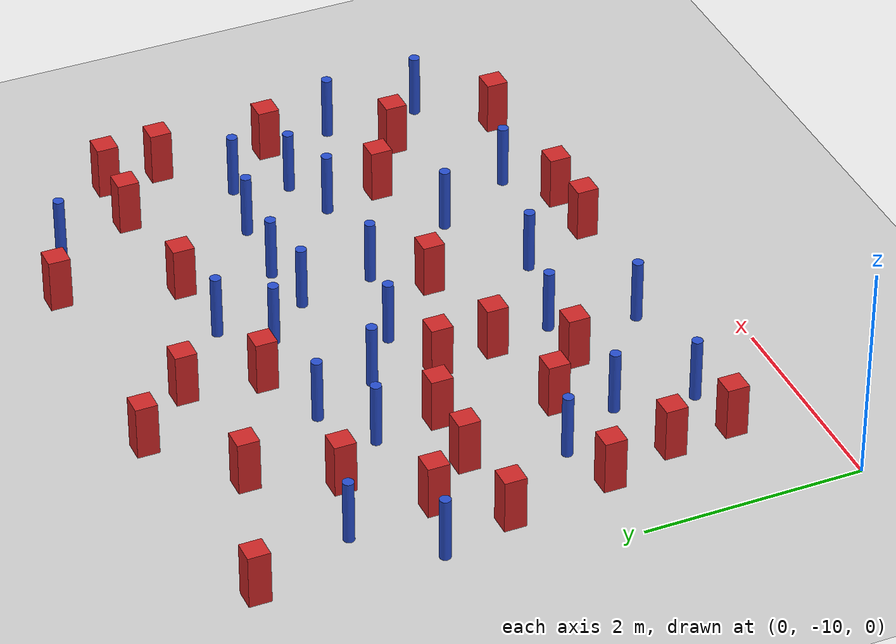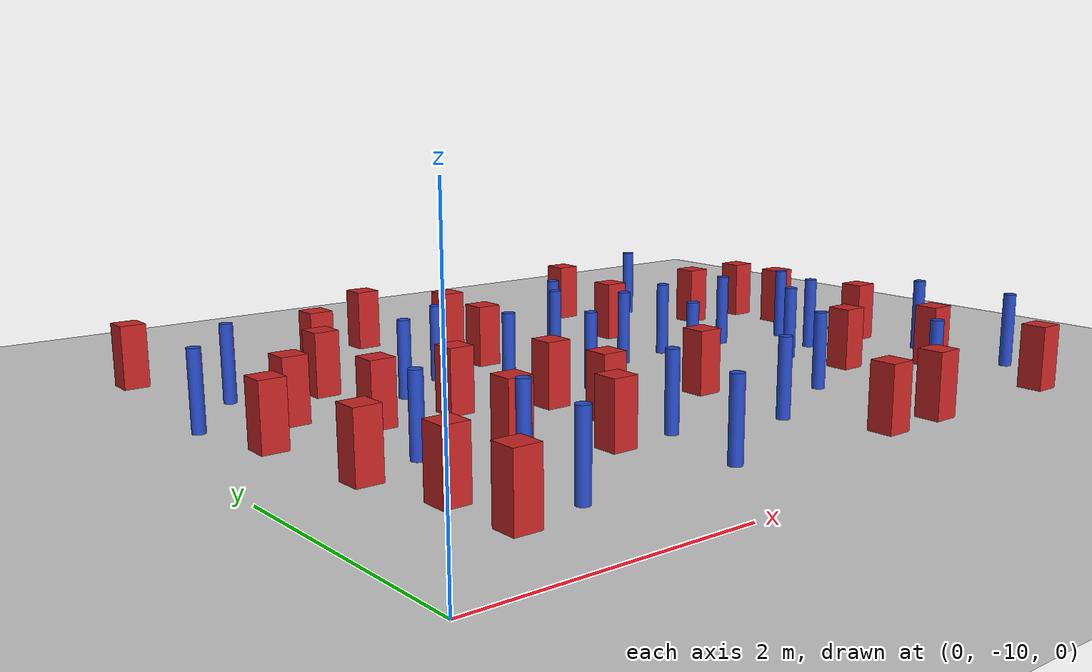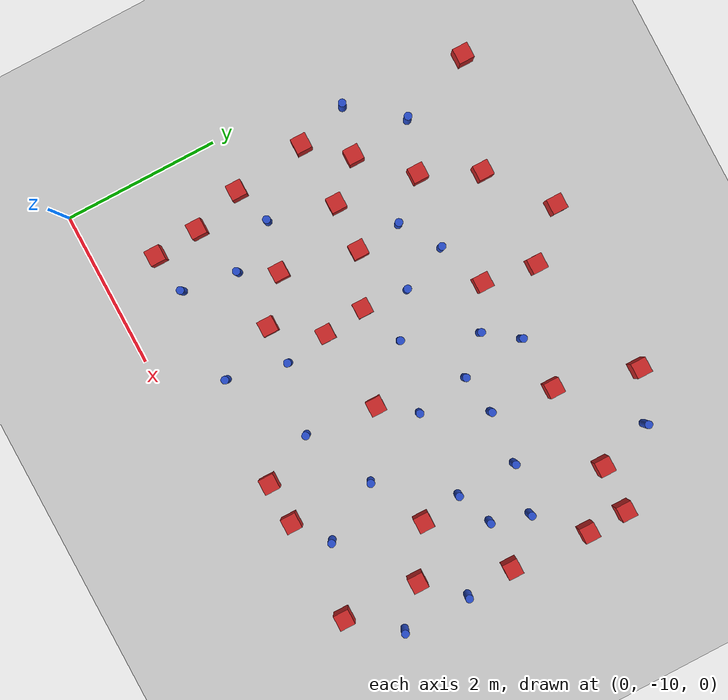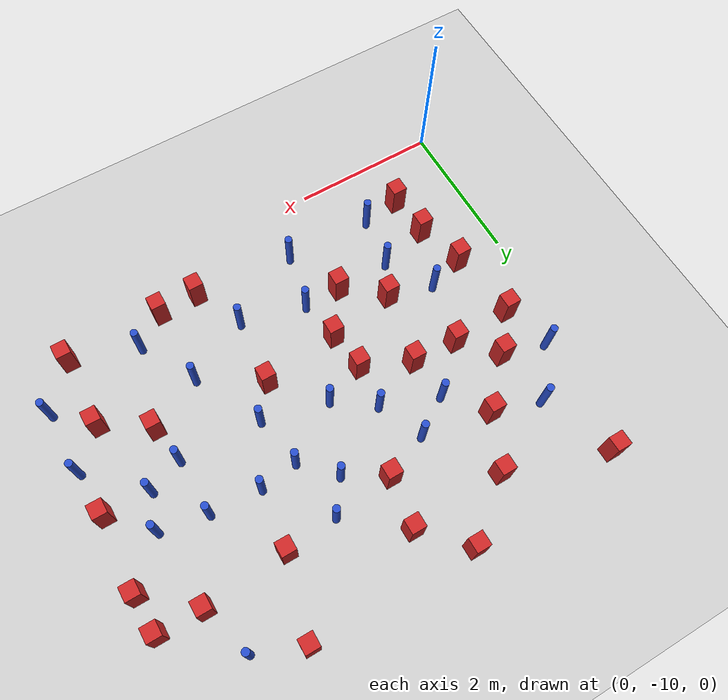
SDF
<sdf version="1.6">
 <world name="default">
  <model name="ground_plane">
   <static>1</static>
   <link name="link">
    <collision name="collision">
     <geometry><plane><normal>0 0 1</normal><size>100 100</size></plane></geometry>
     <surface><friction><ode><mu>100</mu><mu2>50</mu2></ode></friction></surface>
    </collision>
    <visual name="visual">
     <cast_shadows>0</cast_shadows>
     <geometry><plane><normal>0 0 1</normal><size>100 100</size></plane></geometry>
     <material>
      <ambient>1.0 1.0 1.0 1.0</ambient>
      <diffuse>0.8 0.8 0.8 1.0</diffuse>
      <specular>0.01 0.01 0.01 1.000000</specular>
     </material>
    </visual>
   </link>
  </model>
  <model name="square_post_obstacle0">
   <static>true</static>
   <pose>5.91802541232 -9.29908358302 1.91545236811e-07 -7.35059704564e-06 1.12565212e-07 2.39332434364e-05</pose>
   <link name="link">
    <pose>0 0 0.25 0 -0 0</pose>
    <inertial>
     <mass>100</mass>
     <inertia>
      <ixx>0.166667</ixx>
      <ixy>0</ixy>
      <ixz>0</ixz>
      <iyy>0.166667</iyy>
      <iyz>0</iyz>
      <izz>0.166667</izz>
     </inertia>
    </inertial>
    <collision name="collision"><geometry><box><size>.2 .2 .5</size></box></geometry></collision>
    <visual name="visual">
     <geometry><box><size>.2 .2 .5</size></box></geometry>
     <material>
      <script><name>Gazebo/Red</name><uri>file://media/materials/scripts/gazebo.material</uri></script>
     </material>
    </visual>
   </link>
  </model>
  <model name="square_post_obstacle3">
   <static>true</static>
   <pose>3.19145135522 -5.20112439328 1.91545236811e-07 -7.35059704564e-06 1.12565212e-07 2.39332434364e-05</pose>
   <link name="link">
    <pose>0 0 0.25 0 -0 0</pose>
    <inertial>
     <mass>100</mass>
     <inertia>
      <ixx>0.166667</ixx>
      <ixy>0</ixy>
      <ixz>0</ixz>
      <iyy>0.166667</iyy>
      <iyz>0</iyz>
      <izz>0.166667</izz>
     </inertia>
    </inertial>
    <collision name="collision"><geometry><box><size>.2 .2 .5</size></box></geometry></collision>
    <visual name="visual">
     <geometry><box><size>.2 .2 .5</size></box></geometry>
     <material>
      <script><name>Gazebo/Red</name><uri>file://media/materials/scripts/gazebo.material</uri></script>
     </material>
    </visual>
   </link>
  </model>
  <model name="square_post_obstacle9">
   <static>true</static>
   <pose>0.974941100024 -6.5548905209 1.91545236811e-07 -7.35059704564e-06 1.12565212e-07 2.39332434364e-05</pose>
   <link name="link">
    <pose>0 0 0.25 0 -0 0</pose>
    <inertial>
     <mass>100</mass>
     <inertia>
      <ixx>0.166667</ixx>
      <ixy>0</ixy>
      <ixz>0</ixz>
      <iyy>0.166667</iyy>
      <iyz>0</iyz>
      <izz>0.166667</izz>
     </inertia>
    </inertial>
    <collision name="collision"><geometry><box><size>.2 .2 .5</size></box></geometry></collision>
    <visual name="visual">
     <geometry><box><size>.2 .2 .5</size></box></geometry>
     <material>
      <script><name>Gazebo/Red</name><uri>file://media/materials/scripts/gazebo.material</uri></script>
     </material>
    </visual>
   </link>
  </model>
  <model name="pole_obstacle13">
   <static>true</static>
   <pose>3.72014007891 -8.66063864401 7.38925637345e-09 -8.47170692793e-08 1.24976764408e-08 -1.74513093041e-07</pose>
   <link name="link">
    <pose>0 0 0.3 0 -0 0</pose>
    <inertial>
     <mass>1</mass>
     <inertia><ixx>0.145833</ixx><ixy>0</ixy><ixz>0</ixz><iyy>0.145833</iyy><iyz>0</iyz><izz>0.125</izz></inertia>
    </inertial>
    <collision name="collision">
     <geometry><cylinder><radius>0.05</radius><length>.6</length></cylinder></geometry>
    </collision>
    <visual name="visual">
     <geometry><cylinder><radius>0.05</radius><length>.6</length></cylinder></geometry>
     <material>
      <script><name>Gazebo/Blue</name><uri>file://media/materials/scripts/gazebo.material</uri></script>
     </material>
    </visual>
   </link>
  </model>
  <model name="square_post_obstacle27">
   <static>true</static>
   <pose>5.32845050327 -7.89079048025 1.91545236811e-07 -7.35059704564e-06 1.12565212e-07 2.39332434364e-05</pose>
   <link name="link">
    <pose>0 0 0.25 0 -0 0</pose>
    <inertial>
     <mass>100</mass>
     <inertia>
      <ixx>0.166667</ixx>
      <ixy>0</ixy>
      <ixz>0</ixz>
      <iyy>0.166667</iyy>
      <iyz>0</iyz>
      <izz>0.166667</izz>
     </inertia>
    </inertial>
    <collision name="collision"><geometry><box><size>.2 .2 .5</size></box></geometry></collision>
    <visual name="visual">
     <geometry><box><size>.2 .2 .5</size></box></geometry>
     <material>
      <script><name>Gazebo/Red</name><uri>file://media/materials/scripts/gazebo.material</uri></script>
     </material>
    </visual>
   </link>
  </model>
  <model name="pole_obstacle20">
   <static>true</static>
   <pose>4.0101638845 -6.61513149973 7.38925637345e-09 -8.47170692796e-08 1.24976764793e-08 -1.74513093032e-07</pose>
   <link name="link">
    <pose>0 0 0.3 0 -0 0</pose>
    <inertial>
     <mass>1</mass>
     <inertia><ixx>0.145833</ixx><ixy>0</ixy><ixz>0</ixz><iyy>0.145833</iyy><iyz>0</iyz><izz>0.125</izz></inertia>
    </inertial>
    <collision name="collision">
     <geometry><cylinder><radius>0.05</radius><length>.6</length></cylinder></geometry>
    </collision>
    <visual name="visual">
     <geometry><cylinder><radius>0.05</radius><length>.6</length></cylinder></geometry>
     <material>
      <script><name>Gazebo/Blue</name><uri>file://media/materials/scripts/gazebo.material</uri></script>
     </material>
    </visual>
   </link>
  </model>
  <model name="pole_obstacle24">
   <static>true</static>
   <pose>0.369326233479 -6.38760950172 7.38925637345e-09 -8.471706928e-08 1.24976765079e-08 -1.74513093015e-07</pose>
   <link name="link">
    <pose>0 0 0.3 0 -0 0</pose>
    <inertial>
     <mass>1</mass>
     <inertia><ixx>0.145833</ixx><ixy>0</ixy><ixz>0</ixz><iyy>0.145833</iyy><iyz>0</iyz><izz>0.125</izz></inertia>
    </inertial>
    <collision name="collision">
     <geometry><cylinder><radius>0.05</radius><length>.6</length></cylinder></geometry>
    </collision>
    <visual name="visual">
     <geometry><cylinder><radius>0.05</radius><length>.6</length></cylinder></geometry>
     <material>
      <script><name>Gazebo/Blue</name><uri>file://media/materials/scripts/gazebo.material</uri></script>
     </material>
    </visual>
   </link>
  </model>
  <model name="pole_obstacle25">
   <static>true</static>
   <pose>1.96782251755 -6.45773322744 7.38925637345e-09 -8.471706928e-08 1.24976765202e-08 -1.7451309301e-07</pose>
   <link name="link">
    <pose>0 0 0.3 0 -0 0</pose>
    <inertial>
     <mass>1</mass>
     <inertia><ixx>0.145833</ixx><ixy>0</ixy><ixz>0</ixz><iyy>0.145833</iyy><iyz>0</iyz><izz>0.125</izz></inertia>
    </inertial>
    <collision name="collision">
     <geometry><cylinder><radius>0.05</radius><length>.6</length></cylinder></geometry>
    </collision>
    <visual name="visual">
     <geometry><cylinder><radius>0.05</radius><length>.6</length></cylinder></geometry>
     <material>
      <script><name>Gazebo/Blue</name><uri>file://media/materials/scripts/gazebo.material</uri></script>
     </material>
    </visual>
   </link>
  </model>
  <model name="square_post_obstacle40">
   <static>true</static>
   <pose>6.35906747789 -5.65132127458 1.91545236811e-07 -7.35059704564e-06 1.12565212e-07 2.39332434364e-05</pose>
   <link name="link">
    <pose>0 0 0.25 0 -0 0</pose>
    <inertial>
     <mass>100</mass>
     <inertia>
      <ixx>0.166667</ixx>
      <ixy>0</ixy>
      <ixz>0</ixz>
      <iyy>0.166667</iyy>
      <iyz>0</iyz>
      <izz>0.166667</izz>
     </inertia>
    </inertial>
    <collision name="collision"><geometry><box><size>.2 .2 .5</size></box></geometry></collision>
    <visual name="visual">
     <geometry><box><size>.2 .2 .5</size></box></geometry>
     <material>
      <script><name>Gazebo/Red</name><uri>file://media/materials/scripts/gazebo.material</uri></script>
     </material>
    </visual>
   </link>
  </model>
  <model name="pole_obstacle45">
   <static>true</static>
   <pose>5.01745704292 -8.99251812514 7.38925637345e-09 -8.471706928e-08 1.24976765081e-08 -1.74513093015e-07</pose>
   <link name="link">
    <pose>0 0 0.3 0 -0 0</pose>
    <inertial>
     <mass>1</mass>
     <inertia><ixx>0.145833</ixx><ixy>0</ixy><ixz>0</ixz><iyy>0.145833</iyy><iyz>0</iyz><izz>0.125</izz></inertia>
    </inertial>
    <collision name="collision">
     <geometry><cylinder><radius>0.05</radius><length>.6</length></cylinder></geometry>
    </collision>
    <visual name="visual">
     <geometry><cylinder><radius>0.05</radius><length>.6</length></cylinder></geometry>
     <material>
      <script><name>Gazebo/Blue</name><uri>file://media/materials/scripts/gazebo.material</uri></script>
     </material>
    </visual>
   </link>
  </model>
  <model name="square_post_obstacle45">
   <static>true</static>
   <pose>4.0357943352 -9.33460095483 1.91545236811e-07 -7.35059704564e-06 1.12565212e-07 2.39332434364e-05</pose>
   <link name="link">
    <pose>0 0 0.25 0 -0 0</pose>
    <inertial>
     <mass>100</mass>
     <inertia>
      <ixx>0.166667</ixx>
      <ixy>0</ixy>
      <ixz>0</ixz>
      <iyy>0.166667</iyy>
      <iyz>0</iyz>
      <izz>0.166667</izz>
     </inertia>
    </inertial>
    <collision name="collision"><geometry><box><size>.2 .2 .5</size></box></geometry></collision>
    <visual name="visual">
     <geometry><box><size>.2 .2 .5</size></box></geometry>
     <material>
      <script><name>Gazebo/Red</name><uri>file://media/materials/scripts/gazebo.material</uri></script>
     </material>
    </visual>
   </link>
  </model>
  <model name="square_post_obstacle47">
   <static>true</static>
   <pose>4.58356273006 -9.3201476978 1.91545236811e-07 -7.35059704564e-06 1.12565212e-07 2.39332434364e-05</pose>
   <link name="link">
    <pose>0 0 0.25 0 -0 0</pose>
    <inertial>
     <mass>100</mass>
     <inertia>
      <ixx>0.166667</ixx>
      <ixy>0</ixy>
      <ixz>0</ixz>
      <iyy>0.166667</iyy>
      <iyz>0</iyz>
      <izz>0.166667</izz>
     </inertia>
    </inertial>
    <collision name="collision"><geometry><box><size>.2 .2 .5</size></box></geometry></collision>
    <visual name="visual">
     <geometry><box><size>.2 .2 .5</size></box></geometry>
     <material>
      <script><name>Gazebo/Red</name><uri>file://media/materials/scripts/gazebo.material</uri></script>
     </material>
    </visual>
   </link>
  </model>
  <model name="square_post_obstacle51">
   <static>true</static>
   <pose>1.88297851376 -5.25009784492 1.91545236811e-07 -7.35059704564e-06 1.12565212e-07 2.39332434364e-05</pose>
   <link name="link">
    <pose>0 0 0.25 0 -0 0</pose>
    <inertial>
     <mass>100</mass>
     <inertia>
      <ixx>0.166667</ixx>
      <ixy>0</ixy>
      <ixz>0</ixz>
      <iyy>0.166667</iyy>
      <iyz>0</iyz>
      <izz>0.166667</izz>
     </inertia>
    </inertial>
    <collision name="collision"><geometry><box><size>.2 .2 .5</size></box></geometry></collision>
    <visual name="visual">
     <geometry><box><size>.2 .2 .5</size></box></geometry>
     <material>
      <script><name>Gazebo/Red</name><uri>file://media/materials/scripts/gazebo.material</uri></script>
     </material>
    </visual>
   </link>
  </model>
  <model name="pole_obstacle51">
   <static>true</static>
   <pose>3.61067177983 -6.19628787344 7.38925637345e-09 -8.47170692798e-08 1.24976765033e-08 -1.74513093019e-07</pose>
   <link name="link">
    <pose>0 0 0.3 0 -0 0</pose>
    <inertial>
     <mass>1</mass>
     <inertia><ixx>0.145833</ixx><ixy>0</ixy><ixz>0</ixz><iyy>0.145833</iyy><iyz>0</iyz><izz>0.125</izz></inertia>
    </inertial>
    <collision name="collision">
     <geometry><cylinder><radius>0.05</radius><length>.6</length></cylinder></geometry>
    </collision>
    <visual name="visual">
     <geometry><cylinder><radius>0.05</radius><length>.6</length></cylinder></geometry>
     <material>
      <script><name>Gazebo/Blue</name><uri>file://media/materials/scripts/gazebo.material</uri></script>
     </material>
    </visual>
   </link>
  </model>
  <model name="pole_obstacle56">
   <static>true</static>
   <pose>3.91176299712 -5.78391773838 7.38925637345e-09 -8.47170692798e-08 1.24976765033e-08 -1.74513093019e-07</pose>
   <link name="link">
    <pose>0 0 0.3 0 -0 0</pose>
    <inertial>
     <mass>1</mass>
     <inertia><ixx>0.145833</ixx><ixy>0</ixy><ixz>0</ixz><iyy>0.145833</iyy><iyz>0</iyz><izz>0.125</izz></inertia>
    </inertial>
    <collision name="collision">
     <geometry><cylinder><radius>0.05</radius><length>.6</length></cylinder></geometry>
    </collision>
    <visual name="visual">
     <geometry><cylinder><radius>0.05</radius><length>.6</length></cylinder></geometry>
     <material>
      <script><name>Gazebo/Blue</name><uri>file://media/materials/scripts/gazebo.material</uri></script>
     </material>
    </visual>
   </link>
  </model>
  <model name="pole_obstacle62">
   <static>true</static>
   <pose>5.85686588419 -6.69482676359 7.38925637345e-09 -8.47170692796e-08 1.24976764786e-08 -1.74513093032e-07</pose>
   <link name="link">
    <pose>0 0 0.3 0 -0 0</pose>
    <inertial>
     <mass>1</mass>
     <inertia><ixx>0.145833</ixx><ixy>0</ixy><ixz>0</ixz><iyy>0.145833</iyy><iyz>0</iyz><izz>0.125</izz></inertia>
    </inertial>
    <collision name="collision">
     <geometry><cylinder><radius>0.05</radius><length>.6</length></cylinder></geometry>
    </collision>
    <visual name="visual">
     <geometry><cylinder><radius>0.05</radius><length>.6</length></cylinder></geometry>
     <material>
      <script><name>Gazebo/Blue</name><uri>file://media/materials/scripts/gazebo.material</uri></script>
     </material>
    </visual>
   </link>
  </model>
  <model name="pole_obstacle68">
   <static>true</static>
   <pose>6.3874585457 -7.83293034767 7.38925637345e-09 -8.47170692796e-08 1.24976764786e-08 -1.74513093032e-07</pose>
   <link name="link">
    <pose>0 0 0.3 0 -0 0</pose>
    <inertial>
     <mass>1</mass>
     <inertia><ixx>0.145833</ixx><ixy>0</ixy><ixz>0</ixz><iyy>0.145833</iyy><iyz>0</iyz><izz>0.125</izz></inertia>
    </inertial>
    <collision name="collision">
     <geometry><cylinder><radius>0.05</radius><length>.6</length></cylinder></geometry>
    </collision>
    <visual name="visual">
     <geometry><cylinder><radius>0.05</radius><length>.6</length></cylinder></geometry>
     <material>
      <script><name>Gazebo/Blue</name><uri>file://media/materials/scripts/gazebo.material</uri></script>
     </material>
    </visual>
   </link>
  </model>
  <model name="pole_obstacle70">
   <static>true</static>
   <pose>2.83966890681 -8.44475994747 7.38925637345e-09 -8.47170692793e-08 1.24976764408e-08 -1.74513093041e-07</pose>
   <link name="link">
    <pose>0 0 0.3 0 -0 0</pose>
    <inertial>
     <mass>1</mass>
     <inertia><ixx>0.145833</ixx><ixy>0</ixy><ixz>0</ixz><iyy>0.145833</iyy><iyz>0</iyz><izz>0.125</izz></inertia>
    </inertial>
    <collision name="collision">
     <geometry><cylinder><radius>0.05</radius><length>.6</length></cylinder></geometry>
    </collision>
    <visual name="visual">
     <geometry><cylinder><radius>0.05</radius><length>.6</length></cylinder></geometry>
     <material>
      <script><name>Gazebo/Blue</name><uri>file://media/materials/scripts/gazebo.material</uri></script>
     </material>
    </visual>
   </link>
  </model>
  <model name="square_post_obstacle76">
   <static>true</static>
   <pose>6.33407540804 -7.20073876101 1.91545236811e-07 -7.35059704564e-06 1.12565212e-07 2.39332434364e-05</pose>
   <link name="link">
    <pose>0 0 0.25 0 -0 0</pose>
    <inertial>
     <mass>100</mass>
     <inertia>
      <ixx>0.166667</ixx>
      <ixy>0</ixy>
      <ixz>0</ixz>
      <iyy>0.166667</iyy>
      <iyz>0</iyz>
      <izz>0.166667</izz>
     </inertia>
    </inertial>
    <collision name="collision"><geometry><box><size>.2 .2 .5</size></box></geometry></collision>
    <visual name="visual">
     <geometry><box><size>.2 .2 .5</size></box></geometry>
     <material>
      <script><name>Gazebo/Red</name><uri>file://media/materials/scripts/gazebo.material</uri></script>
     </material>
    </visual>
   </link>
  </model>
  <model name="pole_obstacle77">
   <static>true</static>
   <pose>2.72728426632 -6.74001676096 7.38925637345e-09 -8.47170692798e-08 1.24976765033e-08 -1.74513093019e-07</pose>
   <link name="link">
    <pose>0 0 0.3 0 -0 0</pose>
    <inertial>
     <mass>1</mass>
     <inertia><ixx>0.145833</ixx><ixy>0</ixy><ixz>0</ixz><iyy>0.145833</iyy><iyz>0</iyz><izz>0.125</izz></inertia>
    </inertial>
    <collision name="collision">
     <geometry><cylinder><radius>0.05</radius><length>.6</length></cylinder></geometry>
    </collision>
    <visual name="visual">
     <geometry><cylinder><radius>0.05</radius><length>.6</length></cylinder></geometry>
     <material>
      <script><name>Gazebo/Blue</name><uri>file://media/materials/scripts/gazebo.material</uri></script>
     </material>
    </visual>
   </link>
  </model>
  <model name="pole_obstacle84">
   <static>true</static>
   <pose>1.18742929544 -7.85548197411 7.38925637345e-09 -8.47170692799e-08 1.24976765033e-08 -1.74513093018e-07</pose>
   <link name="link">
    <pose>0 0 0.3 0 -0 0</pose>
    <inertial>
     <mass>1</mass>
     <inertia><ixx>0.145833</ixx><ixy>0</ixy><ixz>0</ixz><iyy>0.145833</iyy><iyz>0</iyz><izz>0.125</izz></inertia>
    </inertial>
    <collision name="collision">
     <geometry><cylinder><radius>0.05</radius><length>.6</length></cylinder></geometry>
    </collision>
    <visual name="visual">
     <geometry><cylinder><radius>0.05</radius><length>.6</length></cylinder></geometry>
     <material>
      <script><name>Gazebo/Blue</name><uri>file://media/materials/scripts/gazebo.material</uri></script>
     </material>
    </visual>
   </link>
  </model>
  <model name="square_post_obstacle80">
   <static>true</static>
   <pose>0.690478280085 -8.01573289568 1.91545236811e-07 -7.35059704564e-06 1.12565212e-07 2.39332434364e-05</pose>
   <link name="link">
    <pose>0 0 0.25 0 -0 0</pose>
    <inertial>
     <mass>100</mass>
     <inertia>
      <ixx>0.166667</ixx>
      <ixy>0</ixy>
      <ixz>0</ixz>
      <iyy>0.166667</iyy>
      <iyz>0</iyz>
      <izz>0.166667</izz>
     </inertia>
    </inertial>
    <collision name="collision"><geometry><box><size>.2 .2 .5</size></box></geometry></collision>
    <visual name="visual">
     <geometry><box><size>.2 .2 .5</size></box></geometry>
     <material>
      <script><name>Gazebo/Red</name><uri>file://media/materials/scripts/gazebo.material</uri></script>
     </material>
    </visual>
   </link>
  </model>
  <model name="pole_obstacle91">
   <static>true</static>
   <pose>4.59770289103 -8.23365576051 7.38925637345e-09 -8.471706928e-08 1.24976765081e-08 -1.74513093015e-07</pose>
   <link name="link">
    <pose>0 0 0.3 0 -0 0</pose>
    <inertial>
     <mass>1</mass>
     <inertia><ixx>0.145833</ixx><ixy>0</ixy><ixz>0</ixz><iyy>0.145833</iyy><iyz>0</iyz><izz>0.125</izz></inertia>
    </inertial>
    <collision name="collision">
     <geometry><cylinder><radius>0.05</radius><length>.6</length></cylinder></geometry>
    </collision>
    <visual name="visual">
     <geometry><cylinder><radius>0.05</radius><length>.6</length></cylinder></geometry>
     <material>
      <script><name>Gazebo/Blue</name><uri>file://media/materials/scripts/gazebo.material</uri></script>
     </material>
    </visual>
   </link>
  </model>
  <model name="pole_obstacle95">
   <static>true</static>
   <pose>5.23960944196 -7.36124188293 7.38925637345e-09 -8.47170692796e-08 1.24976764786e-08 -1.74513093032e-07</pose>
   <link name="link">
    <pose>0 0 0.3 0 -0 0</pose>
    <inertial>
     <mass>1</mass>
     <inertia><ixx>0.145833</ixx><ixy>0</ixy><ixz>0</ixz><iyy>0.145833</iyy><iyz>0</iyz><izz>0.125</izz></inertia>
    </inertial>
    <collision name="collision">
     <geometry><cylinder><radius>0.05</radius><length>.6</length></cylinder></geometry>
    </collision>
    <visual name="visual">
     <geometry><cylinder><radius>0.05</radius><length>.6</length></cylinder></geometry>
     <material>
      <script><name>Gazebo/Blue</name><uri>file://media/materials/scripts/gazebo.material</uri></script>
     </material>
    </visual>
   </link>
  </model>
  <model name="square_post_obstacle87">
   <static>true</static>
   <pose>2.02219436791 -7.04199621471 1.91545236811e-07 -7.35059704564e-06 1.12565212e-07 2.39332434364e-05</pose>
   <link name="link">
    <pose>0 0 0.25 0 -0 0</pose>
    <inertial>
     <mass>100</mass>
     <inertia>
      <ixx>0.166667</ixx>
      <ixy>0</ixy>
      <ixz>0</ixz>
      <iyy>0.166667</iyy>
      <iyz>0</iyz>
      <izz>0.166667</izz>
     </inertia>
    </inertial>
    <collision name="collision"><geometry><box><size>.2 .2 .5</size></box></geometry></collision>
    <visual name="visual">
     <geometry><box><size>.2 .2 .5</size></box></geometry>
     <material>
      <script><name>Gazebo/Red</name><uri>file://media/materials/scripts/gazebo.material</uri></script>
     </material>
    </visual>
   </link>
  </model>
  <model name="pole_obstacle102">
   <static>true</static>
   <pose>6.40056564858 -8.71573344989 7.38925637345e-09 -8.471706928e-08 1.24976765081e-08 -1.74513093015e-07</pose>
   <link name="link">
    <pose>0 0 0.3 0 -0 0</pose>
    <inertial>
     <mass>1</mass>
     <inertia><ixx>0.145833</ixx><ixy>0</ixy><ixz>0</ixz><iyy>0.145833</iyy><iyz>0</iyz><izz>0.125</izz></inertia>
    </inertial>
    <collision name="collision">
     <geometry><cylinder><radius>0.05</radius><length>.6</length></cylinder></geometry>
    </collision>
    <visual name="visual">
     <geometry><cylinder><radius>0.05</radius><length>.6</length></cylinder></geometry>
     <material>
      <script><name>Gazebo/Blue</name><uri>file://media/materials/scripts/gazebo.material</uri></script>
     </material>
    </visual>
   </link>
  </model>
  <model name="pole_obstacle106">
   <static>true</static>
   <pose>2.66700962202 -9.20906071102 7.38925637345e-09 -8.47170692793e-08 1.24976764408e-08 -1.74513093041e-07</pose>
   <link name="link">
    <pose>0 0 0.3 0 -0 0</pose>
    <inertial>
     <mass>1</mass>
     <inertia><ixx>0.145833</ixx><ixy>0</ixy><ixz>0</ixz><iyy>0.145833</iyy><iyz>0</iyz><izz>0.125</izz></inertia>
    </inertial>
    <collision name="collision">
     <geometry><cylinder><radius>0.05</radius><length>.6</length></cylinder></geometry>
    </collision>
    <visual name="visual">
     <geometry><cylinder><radius>0.05</radius><length>.6</length></cylinder></geometry>
     <material>
      <script><name>Gazebo/Blue</name><uri>file://media/materials/scripts/gazebo.material</uri></script>
     </material>
    </visual>
   </link>
  </model>
  <model name="pole_obstacle107">
   <static>true</static>
   <pose>2.46715745902 -6.13149019021 7.38925637345e-09 -8.47170692798e-08 1.24976765033e-08 -1.74513093019e-07</pose>
   <link name="link">
    <pose>0 0 0.3 0 -0 0</pose>
    <inertial>
     <mass>1</mass>
     <inertia><ixx>0.145833</ixx><ixy>0</ixy><ixz>0</ixz><iyy>0.145833</iyy><iyz>0</iyz><izz>0.125</izz></inertia>
    </inertial>
    <collision name="collision">
     <geometry><cylinder><radius>0.05</radius><length>.6</length></cylinder></geometry>
    </collision>
    <visual name="visual">
     <geometry><cylinder><radius>0.05</radius><length>.6</length></cylinder></geometry>
     <material>
      <script><name>Gazebo/Blue</name><uri>file://media/materials/scripts/gazebo.material</uri></script>
     </material>
    </visual>
   </link>
  </model>
  <model name="pole_obstacle112">
   <static>true</static>
   <pose>0.884597210753 -5.75880666594 7.38925637345e-09 -8.471706928e-08 1.24976765086e-08 -1.74513093015e-07</pose>
   <link name="link">
    <pose>0 0 0.3 0 -0 0</pose>
    <inertial>
     <mass>1</mass>
     <inertia><ixx>0.145833</ixx><ixy>0</ixy><ixz>0</ixz><iyy>0.145833</iyy><iyz>0</iyz><izz>0.125</izz></inertia>
    </inertial>
    <collision name="collision">
     <geometry><cylinder><radius>0.05</radius><length>.6</length></cylinder></geometry>
    </collision>
    <visual name="visual">
     <geometry><cylinder><radius>0.05</radius><length>.6</length></cylinder></geometry>
     <material>
      <script><name>Gazebo/Blue</name><uri>file://media/materials/scripts/gazebo.material</uri></script>
     </material>
    </visual>
   </link>
  </model>
  <model name="square_post_obstacle104">
   <static>true</static>
   <pose>4.90169187253 -4.67783938072 1.91545236811e-07 -7.35059704564e-06 1.12565212e-07 2.39332434364e-05</pose>
   <link name="link">
    <pose>0 0 0.25 0 -0 0</pose>
    <inertial>
     <mass>100</mass>
     <inertia>
      <ixx>0.166667</ixx>
      <ixy>0</ixy>
      <ixz>0</ixz>
      <iyy>0.166667</iyy>
      <iyz>0</iyz>
      <izz>0.166667</izz>
     </inertia>
    </inertial>
    <collision name="collision"><geometry><box><size>.2 .2 .5</size></box></geometry></collision>
    <visual name="visual">
     <geometry><box><size>.2 .2 .5</size></box></geometry>
     <material>
      <script><name>Gazebo/Red</name><uri>file://media/materials/scripts/gazebo.material</uri></script>
     </material>
    </visual>
   </link>
  </model>
  <model name="square_post_obstacle105">
   <static>true</static>
   <pose>3.08391630261 -5.88631896239 1.91545236811e-07 -7.35059704564e-06 1.12565212e-07 2.39332434364e-05</pose>
   <link name="link">
    <pose>0 0 0.25 0 -0 0</pose>
    <inertial>
     <mass>100</mass>
     <inertia>
      <ixx>0.166667</ixx>
      <ixy>0</ixy>
      <ixz>0</ixz>
      <iyy>0.166667</iyy>
      <iyz>0</iyz>
      <izz>0.166667</izz>
     </inertia>
    </inertial>
    <collision name="collision"><geometry><box><size>.2 .2 .5</size></box></geometry></collision>
    <visual name="visual">
     <geometry><box><size>.2 .2 .5</size></box></geometry>
     <material>
      <script><name>Gazebo/Red</name><uri>file://media/materials/scripts/gazebo.material</uri></script>
     </material>
    </visual>
   </link>
  </model>
  <model name="square_post_obstacle107">
   <static>true</static>
   <pose>0.559766274928 -7.05273132615 1.91545236811e-07 -7.35059704564e-06 1.12565212e-07 2.39332434364e-05</pose>
   <link name="link">
    <pose>0 0 0.25 0 -0 0</pose>
    <inertial>
     <mass>100</mass>
     <inertia>
      <ixx>0.166667</ixx>
      <ixy>0</ixy>
      <ixz>0</ixz>
      <iyy>0.166667</iyy>
      <iyz>0</iyz>
      <izz>0.166667</izz>
     </inertia>
    </inertial>
    <collision name="collision"><geometry><box><size>.2 .2 .5</size></box></geometry></collision>
    <visual name="visual">
     <geometry><box><size>.2 .2 .5</size></box></geometry>
     <material>
      <script><name>Gazebo/Red</name><uri>file://media/materials/scripts/gazebo.material</uri></script>
     </material>
    </visual>
   </link>
  </model>
  <model name="pole_obstacle122">
   <static>true</static>
   <pose>4.52605245914 -6.53517771362 7.38925637345e-09 -8.47170692796e-08 1.24976764786e-08 -1.74513093032e-07</pose>
   <link name="link">
    <pose>0 0 0.3 0 -0 0</pose>
    <inertial>
     <mass>1</mass>
     <inertia><ixx>0.145833</ixx><ixy>0</ixy><ixz>0</ixz><iyy>0.145833</iyy><iyz>0</iyz><izz>0.125</izz></inertia>
    </inertial>
    <collision name="collision">
     <geometry><cylinder><radius>0.05</radius><length>.6</length></cylinder></geometry>
    </collision>
    <visual name="visual">
     <geometry><cylinder><radius>0.05</radius><length>.6</length></cylinder></geometry>
     <material>
      <script><name>Gazebo/Blue</name><uri>file://media/materials/scripts/gazebo.material</uri></script>
     </material>
    </visual>
   </link>
  </model>
  <model name="pole_obstacle134">
   <static>true</static>
   <pose>1.45577365722 -9.17842392211 7.38925637345e-09 -8.47170692798e-08 1.24976764881e-08 -1.74513093027e-07</pose>
   <link name="link">
    <pose>0 0 0.3 0 -0 0</pose>
    <inertial>
     <mass>1</mass>
     <inertia><ixx>0.145833</ixx><ixy>0</ixy><ixz>0</ixz><iyy>0.145833</iyy><iyz>0</iyz><izz>0.125</izz></inertia>
    </inertial>
    <collision name="collision">
     <geometry><cylinder><radius>0.05</radius><length>.6</length></cylinder></geometry>
    </collision>
    <visual name="visual">
     <geometry><cylinder><radius>0.05</radius><length>.6</length></cylinder></geometry>
     <material>
      <script><name>Gazebo/Blue</name><uri>file://media/materials/scripts/gazebo.material</uri></script>
     </material>
    </visual>
   </link>
  </model>
  <model name="square_post_obstacle118">
   <static>true</static>
   <pose>1.39564081458 -7.01495339901 1.91545236811e-07 -7.35059704564e-06 1.12565212e-07 2.39332434364e-05</pose>
   <link name="link">
    <pose>0 0 0.25 0 -0 0</pose>
    <inertial>
     <mass>100</mass>
     <inertia>
      <ixx>0.166667</ixx>
      <ixy>0</ixy>
      <ixz>0</ixz>
      <iyy>0.166667</iyy>
      <iyz>0</iyz>
      <izz>0.166667</izz>
     </inertia>
    </inertial>
    <collision name="collision"><geometry><box><size>.2 .2 .5</size></box></geometry></collision>
    <visual name="visual">
     <geometry><box><size>.2 .2 .5</size></box></geometry>
     <material>
      <script><name>Gazebo/Red</name><uri>file://media/materials/scripts/gazebo.material</uri></script>
     </material>
    </visual>
   </link>
  </model>
  <model name="square_post_obstacle123">
   <static>true</static>
   <pose>5.94321336377 -8.29727431137 1.91545236811e-07 -7.35059704564e-06 1.12565212e-07 2.39332434364e-05</pose>
   <link name="link">
    <pose>0 0 0.25 0 -0 0</pose>
    <inertial>
     <mass>100</mass>
     <inertia>
      <ixx>0.166667</ixx>
      <ixy>0</ixy>
      <ixz>0</ixz>
      <iyy>0.166667</iyy>
      <iyz>0</iyz>
      <izz>0.166667</izz>
     </inertia>
    </inertial>
    <collision name="collision"><geometry><box><size>.2 .2 .5</size></box></geometry></collision>
    <visual name="visual">
     <geometry><box><size>.2 .2 .5</size></box></geometry>
     <material>
      <script><name>Gazebo/Red</name><uri>file://media/materials/scripts/gazebo.material</uri></script>
     </material>
    </visual>
   </link>
  </model>
  <model name="pole_obstacle140">
   <static>true</static>
   <pose>5.54184760207 -4.93345174598 7.38925637345e-09 -8.47170692796e-08 1.24976764786e-08 -1.74513093032e-07</pose>
   <link name="link">
    <pose>0 0 0.3 0 -0 0</pose>
    <inertial>
     <mass>1</mass>
     <inertia><ixx>0.145833</ixx><ixy>0</ixy><ixz>0</ixz><iyy>0.145833</iyy><iyz>0</iyz><izz>0.125</izz></inertia>
    </inertial>
    <collision name="collision">
     <geometry><cylinder><radius>0.05</radius><length>.6</length></cylinder></geometry>
    </collision>
    <visual name="visual">
     <geometry><cylinder><radius>0.05</radius><length>.6</length></cylinder></geometry>
     <material>
      <script><name>Gazebo/Blue</name><uri>file://media/materials/scripts/gazebo.material</uri></script>
     </material>
    </visual>
   </link>
  </model>
  <model name="pole_obstacle142">
   <static>true</static>
   <pose>5.21853086806 -6.57636416401 7.38925637345e-09 -8.47170692796e-08 1.24976764786e-08 -1.74513093032e-07</pose>
   <link name="link">
    <pose>0 0 0.3 0 -0 0</pose>
    <inertial>
     <mass>1</mass>
     <inertia><ixx>0.145833</ixx><ixy>0</ixy><ixz>0</ixz><iyy>0.145833</iyy><iyz>0</iyz><izz>0.125</izz></inertia>
    </inertial>
    <collision name="collision">
     <geometry><cylinder><radius>0.05</radius><length>.6</length></cylinder></geometry>
    </collision>
    <visual name="visual">
     <geometry><cylinder><radius>0.05</radius><length>.6</length></cylinder></geometry>
     <material>
      <script><name>Gazebo/Blue</name><uri>file://media/materials/scripts/gazebo.material</uri></script>
     </material>
    </visual>
   </link>
  </model>
  <model name="square_post_obstacle134">
   <static>true</static>
   <pose>2.7415765123 -7.87473221574 1.91545236811e-07 -7.35059704564e-06 1.12565212e-07 2.39332434364e-05</pose>
   <link name="link">
    <pose>0 0 0.25 0 -0 0</pose>
    <inertial>
     <mass>100</mass>
     <inertia>
      <ixx>0.166667</ixx>
      <ixy>0</ixy>
      <ixz>0</ixz>
      <iyy>0.166667</iyy>
      <iyz>0</iyz>
      <izz>0.166667</izz>
     </inertia>
    </inertial>
    <collision name="collision"><geometry><box><size>.2 .2 .5</size></box></geometry></collision>
    <visual name="visual">
     <geometry><box><size>.2 .2 .5</size></box></geometry>
     <material>
      <script><name>Gazebo/Red</name><uri>file://media/materials/scripts/gazebo.material</uri></script>
     </material>
    </visual>
   </link>
  </model>
  <model name="square_post_obstacle136">
   <static>true</static>
   <pose>0.877867653147 -8.66364401858 1.91545236811e-07 -7.35059704564e-06 1.12565212e-07 2.39332434364e-05</pose>
   <link name="link">
    <pose>0 0 0.25 0 -0 0</pose>
    <inertial>
     <mass>100</mass>
     <inertia>
      <ixx>0.166667</ixx>
      <ixy>0</ixy>
      <ixz>0</ixz>
      <iyy>0.166667</iyy>
      <iyz>0</iyz>
      <izz>0.166667</izz>
     </inertia>
    </inertial>
    <collision name="collision"><geometry><box><size>.2 .2 .5</size></box></geometry></collision>
    <visual name="visual">
     <geometry><box><size>.2 .2 .5</size></box></geometry>
     <material>
      <script><name>Gazebo/Red</name><uri>file://media/materials/scripts/gazebo.material</uri></script>
     </material>
    </visual>
   </link>
  </model>
  <model name="pole_obstacle157">
   <static>true</static>
   <pose>5.70712781997 -7.17707085056 7.38925637345e-09 -8.47170692796e-08 1.24976764786e-08 -1.74513093032e-07</pose>
   <link name="link">
    <pose>0 0 0.3 0 -0 0</pose>
    <inertial>
     <mass>1</mass>
     <inertia><ixx>0.145833</ixx><ixy>0</ixy><ixz>0</ixz><iyy>0.145833</iyy><iyz>0</iyz><izz>0.125</izz></inertia>
    </inertial>
    <collision name="collision">
     <geometry><cylinder><radius>0.05</radius><length>.6</length></cylinder></geometry>
    </collision>
    <visual name="visual">
     <geometry><cylinder><radius>0.05</radius><length>.6</length></cylinder></geometry>
     <material>
      <script><name>Gazebo/Blue</name><uri>file://media/materials/scripts/gazebo.material</uri></script>
     </material>
    </visual>
   </link>
  </model>
  <model name="pole_obstacle158">
   <static>true</static>
   <pose>1.56947755032 -8.47032598567 7.38925637345e-09 -8.47170692798e-08 1.24976764881e-08 -1.74513093027e-07</pose>
   <link name="link">
    <pose>0 0 0.3 0 -0 0</pose>
    <inertial>
     <mass>1</mass>
     <inertia><ixx>0.145833</ixx><ixy>0</ixy><ixz>0</ixz><iyy>0.145833</iyy><iyz>0</iyz><izz>0.125</izz></inertia>
    </inertial>
    <collision name="collision">
     <geometry><cylinder><radius>0.05</radius><length>.6</length></cylinder></geometry>
    </collision>
    <visual name="visual">
     <geometry><cylinder><radius>0.05</radius><length>.6</length></cylinder></geometry>
     <material>
      <script><name>Gazebo/Blue</name><uri>file://media/materials/scripts/gazebo.material</uri></script>
     </material>
    </visual>
   </link>
  </model>
  <model name="square_post_obstacle160">
   <static>true</static>
   <pose>4.62404250464 -5.72430122576 1.91545236811e-07 -7.35059704564e-06 1.12565212e-07 2.39332434364e-05</pose>
   <link name="link">
    <pose>0 0 0.25 0 -0 0</pose>
    <inertial>
     <mass>100</mass>
     <inertia>
      <ixx>0.166667</ixx>
      <ixy>0</ixy>
      <ixz>0</ixz>
      <iyy>0.166667</iyy>
      <iyz>0</iyz>
      <izz>0.166667</izz>
     </inertia>
    </inertial>
    <collision name="collision"><geometry><box><size>.2 .2 .5</size></box></geometry></collision>
    <visual name="visual">
     <geometry><box><size>.2 .2 .5</size></box></geometry>
     <material>
      <script><name>Gazebo/Red</name><uri>file://media/materials/scripts/gazebo.material</uri></script>
     </material>
    </visual>
   </link>
  </model>
  <model name="square_post_obstacle161">
   <static>true</static>
   <pose>6.38102681143 -6.16877237193 1.91545236811e-07 -7.35059704564e-06 1.12565212e-07 2.39332434364e-05</pose>
   <link name="link">
    <pose>0 0 0.25 0 -0 0</pose>
    <inertial>
     <mass>100</mass>
     <inertia>
      <ixx>0.166667</ixx>
      <ixy>0</ixy>
      <ixz>0</ixz>
      <iyy>0.166667</iyy>
      <iyz>0</iyz>
      <izz>0.166667</izz>
     </inertia>
    </inertial>
    <collision name="collision"><geometry><box><size>.2 .2 .5</size></box></geometry></collision>
    <visual name="visual">
     <geometry><box><size>.2 .2 .5</size></box></geometry>
     <material>
      <script><name>Gazebo/Red</name><uri>file://media/materials/scripts/gazebo.material</uri></script>
     </material>
    </visual>
   </link>
  </model>
  <model name="square_post_obstacle166">
   <static>true</static>
   <pose>0.931698348155 -9.25896911977 1.91545236811e-07 -7.35059704564e-06 1.12565212e-07 2.39332434364e-05</pose>
   <link name="link">
    <pose>0 0 0.25 0 -0 0</pose>
    <inertial>
     <mass>100</mass>
     <inertia>
      <ixx>0.166667</ixx>
      <ixy>0</ixy>
      <ixz>0</ixz>
      <iyy>0.166667</iyy>
      <iyz>0</iyz>
      <izz>0.166667</izz>
     </inertia>
    </inertial>
    <collision name="collision"><geometry><box><size>.2 .2 .5</size></box></geometry></collision>
    <visual name="visual">
     <geometry><box><size>.2 .2 .5</size></box></geometry>
     <material>
      <script><name>Gazebo/Red</name><uri>file://media/materials/scripts/gazebo.material</uri></script>
     </material>
    </visual>
   </link>
  </model>
  <model name="square_post_obstacle170">
   <static>true</static>
   <pose>2.66130995461 -4.65027587539 1.91545236811e-07 -7.35059704564e-06 1.12565212e-07 2.39332434364e-05</pose>
   <link name="link">
    <pose>0 0 0.25 0 -0 0</pose>
    <inertial>
     <mass>100</mass>
     <inertia>
      <ixx>0.166667</ixx>
      <ixy>0</ixy>
      <ixz>0</ixz>
      <iyy>0.166667</iyy>
      <iyz>0</iyz>
      <izz>0.166667</izz>
     </inertia>
    </inertial>
    <collision name="collision"><geometry><box><size>.2 .2 .5</size></box></geometry></collision>
    <visual name="visual">
     <geometry><box><size>.2 .2 .5</size></box></geometry>
     <material>
      <script><name>Gazebo/Red</name><uri>file://media/materials/scripts/gazebo.material</uri></script>
     </material>
    </visual>
   </link>
  </model>
  <model name="square_post_obstacle187">
   <static>true</static>
   <pose>0.514647942686 -4.80115287381 1.91545236811e-07 -7.35059704564e-06 1.12565212e-07 2.39332434364e-05</pose>
   <link name="link">
    <pose>0 0 0.25 0 -0 0</pose>
    <inertial>
     <mass>100</mass>
     <inertia>
      <ixx>0.166667</ixx>
      <ixy>0</ixy>
      <ixz>0</ixz>
      <iyy>0.166667</iyy>
      <iyz>0</iyz>
      <izz>0.166667</izz>
     </inertia>
    </inertial>
    <collision name="collision"><geometry><box><size>.2 .2 .5</size></box></geometry></collision>
    <visual name="visual">
     <geometry><box><size>.2 .2 .5</size></box></geometry>
     <material>
      <script><name>Gazebo/Red</name><uri>file://media/materials/scripts/gazebo.material</uri></script>
     </material>
    </visual>
   </link>
  </model>
  <model name="square_post_obstacle189">
   <static>true</static>
   <pose>1.53898044132 -5.96466689424 1.91545236811e-07 -7.35059704564e-06 1.12565212e-07 2.39332434364e-05</pose>
   <link name="link">
    <pose>0 0 0.25 0 -0 0</pose>
    <inertial>
     <mass>100</mass>
     <inertia>
      <ixx>0.166667</ixx>
      <ixy>0</ixy>
      <ixz>0</ixz>
      <iyy>0.166667</iyy>
      <iyz>0</iyz>
      <izz>0.166667</izz>
     </inertia>
    </inertial>
    <collision name="collision"><geometry><box><size>.2 .2 .5</size></box></geometry></collision>
    <visual name="visual">
     <geometry><box><size>.2 .2 .5</size></box></geometry>
     <material>
      <script><name>Gazebo/Red</name><uri>file://media/materials/scripts/gazebo.material</uri></script>
     </material>
    </visual>
   </link>
  </model>
  <model name="pole_obstacle191">
   <static>true</static>
   <pose>3.24005574382 -7.10825570667 7.38925637345e-09 -8.47170692798e-08 1.24976765033e-08 -1.74513093019e-07</pose>
   <link name="link">
    <pose>0 0 0.3 0 -0 0</pose>
    <inertial>
     <mass>1</mass>
     <inertia><ixx>0.145833</ixx><ixy>0</ixy><ixz>0</ixz><iyy>0.145833</iyy><iyz>0</iyz><izz>0.125</izz></inertia>
    </inertial>
    <collision name="collision">
     <geometry><cylinder><radius>0.05</radius><length>.6</length></cylinder></geometry>
    </collision>
    <visual name="visual">
     <geometry><cylinder><radius>0.05</radius><length>.6</length></cylinder></geometry>
     <material>
      <script><name>Gazebo/Blue</name><uri>file://media/materials/scripts/gazebo.material</uri></script>
     </material>
    </visual>
   </link>
  </model>
  <model name="pole_obstacle198">
   <static>true</static>
   <pose>4.1299031384 -7.31312258092 7.38925637345e-09 -8.47170692796e-08 1.24976764786e-08 -1.74513093032e-07</pose>
   <link name="link">
    <pose>0 0 0.3 0 -0 0</pose>
    <inertial>
     <mass>1</mass>
     <inertia><ixx>0.145833</ixx><ixy>0</ixy><ixz>0</ixz><iyy>0.145833</iyy><iyz>0</iyz><izz>0.125</izz></inertia>
    </inertial>
    <collision name="collision">
     <geometry><cylinder><radius>0.05</radius><length>.6</length></cylinder></geometry>
    </collision>
    <visual name="visual">
     <geometry><cylinder><radius>0.05</radius><length>.6</length></cylinder></geometry>
     <material>
      <script><name>Gazebo/Blue</name><uri>file://media/materials/scripts/gazebo.material</uri></script>
     </material>
    </visual>
   </link>
  </model>
  <model name="square_post_obstacle201">
   <static>true</static>
   <pose>3.8066424155 -7.74345700354 1.91545236811e-07 -7.35059704564e-06 1.12565212e-07 2.39332434364e-05</pose>
   <link name="link">
    <pose>0 0 0.25 0 -0 0</pose>
    <inertial>
     <mass>100</mass>
     <inertia>
      <ixx>0.166667</ixx>
      <ixy>0</ixy>
      <ixz>0</ixz>
      <iyy>0.166667</iyy>
      <iyz>0</iyz>
      <izz>0.166667</izz>
     </inertia>
    </inertial>
    <collision name="collision"><geometry><box><size>.2 .2 .5</size></box></geometry></collision>
    <visual name="visual">
     <geometry><box><size>.2 .2 .5</size></box></geometry>
     <material>
      <script><name>Gazebo/Red</name><uri>file://media/materials/scripts/gazebo.material</uri></script>
     </material>
    </visual>
   </link>
  </model>
  <model name="square_post_obstacle208">
   <static>true</static>
   <pose>5.75722507975 -5.6289803193 1.91545236811e-07 -7.35059704564e-06 1.12565212e-07 2.39332434364e-05</pose>
   <link name="link">
    <pose>0 0 0.25 0 -0 0</pose>
    <inertial>
     <mass>100</mass>
     <inertia>
      <ixx>0.166667</ixx>
      <ixy>0</ixy>
      <ixz>0</ixz>
      <iyy>0.166667</iyy>
      <iyz>0</iyz>
      <izz>0.166667</izz>
     </inertia>
    </inertial>
    <collision name="collision"><geometry><box><size>.2 .2 .5</size></box></geometry></collision>
    <visual name="visual">
     <geometry><box><size>.2 .2 .5</size></box></geometry>
     <material>
      <script><name>Gazebo/Red</name><uri>file://media/materials/scripts/gazebo.material</uri></script>
     </material>
    </visual>
   </link>
  </model>
  <model name="square_post_obstacle214">
   <static>true</static>
   <pose>1.81016140858 -8.02225234475 1.91545236811e-07 -7.35059704564e-06 1.12565212e-07 2.39332434364e-05</pose>
   <link name="link">
    <pose>0 0 0.25 0 -0 0</pose>
    <inertial>
     <mass>100</mass>
     <inertia>
      <ixx>0.166667</ixx>
      <ixy>0</ixy>
      <ixz>0</ixz>
      <iyy>0.166667</iyy>
      <iyz>0</iyz>
      <izz>0.166667</izz>
     </inertia>
    </inertial>
    <collision name="collision"><geometry><box><size>.2 .2 .5</size></box></geometry></collision>
    <visual name="visual">
     <geometry><box><size>.2 .2 .5</size></box></geometry>
     <material>
      <script><name>Gazebo/Red</name><uri>file://media/materials/scripts/gazebo.material</uri></script>
     </material>
    </visual>
   </link>
  </model>
  <model name="square_post_obstacle215">
   <static>true</static>
   <pose>2.33127402464 -8.45256349294 1.91545236811e-07 -7.35059704564e-06 1.12565212e-07 2.39332434364e-05</pose>
   <link name="link">
    <pose>0 0 0.25 0 -0 0</pose>
    <inertial>
     <mass>100</mass>
     <inertia>
      <ixx>0.166667</ixx>
      <ixy>0</ixy>
      <ixz>0</ixz>
      <iyy>0.166667</iyy>
      <iyz>0</iyz>
      <izz>0.166667</izz>
     </inertia>
    </inertial>
    <collision name="collision"><geometry><box><size>.2 .2 .5</size></box></geometry></collision>
    <visual name="visual">
     <geometry><box><size>.2 .2 .5</size></box></geometry>
     <material>
      <script><name>Gazebo/Red</name><uri>file://media/materials/scripts/gazebo.material</uri></script>
     </material>
    </visual>
   </link>
  </model>
  <model name="square_post_obstacle218">
   <static>true</static>
   <pose>2.67671358285 -7.3282647005 1.91545236811e-07 -7.35059704564e-06 1.12565212e-07 2.39332434364e-05</pose>
   <link name="link">
    <pose>0 0 0.25 0 -0 0</pose>
    <inertial>
     <mass>100</mass>
     <inertia>
      <ixx>0.166667</ixx>
      <ixy>0</ixy>
      <ixz>0</ixz>
      <iyy>0.166667</iyy>
      <iyz>0</iyz>
      <izz>0.166667</izz>
     </inertia>
    </inertial>
    <collision name="collision"><geometry><box><size>.2 .2 .5</size></box></geometry></collision>
    <visual name="visual">
     <geometry><box><size>.2 .2 .5</size></box></geometry>
     <material>
      <script><name>Gazebo/Red</name><uri>file://media/materials/scripts/gazebo.material</uri></script>
     </material>
    </visual>
   </link>
  </model>
 </world>
</sdf>
